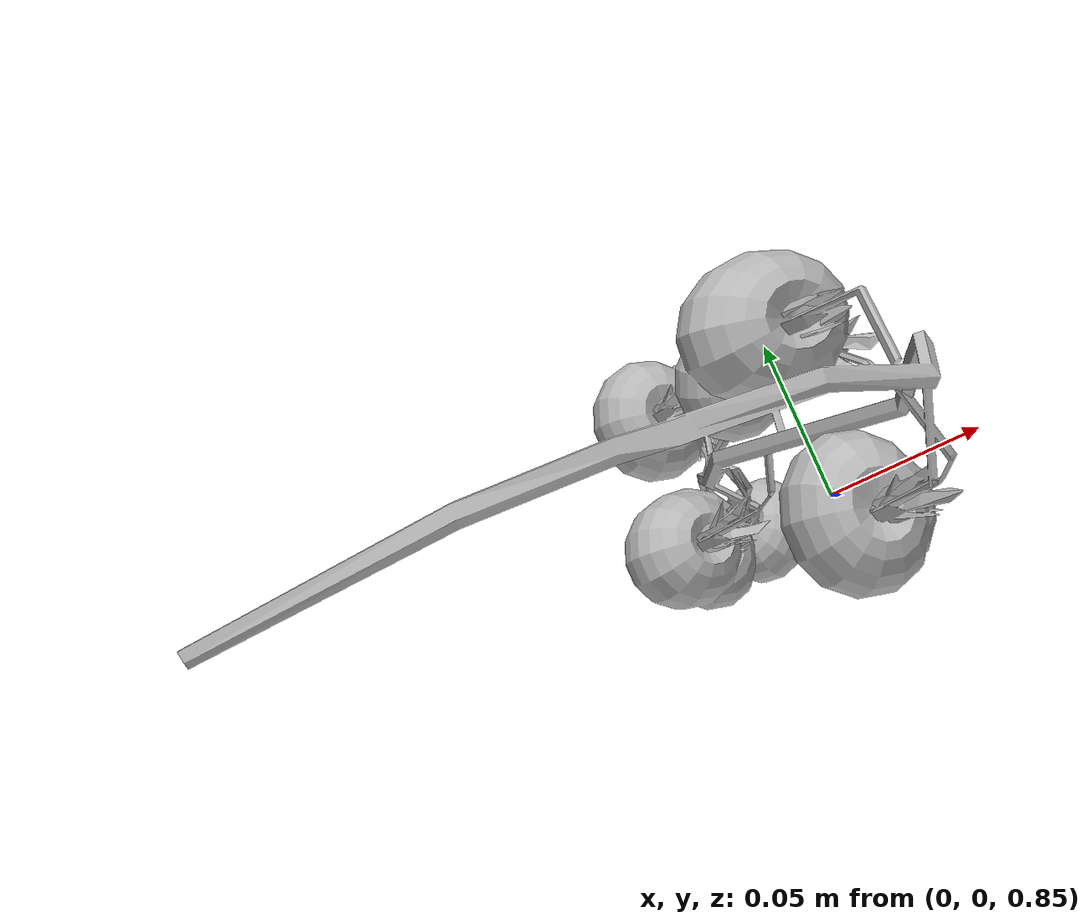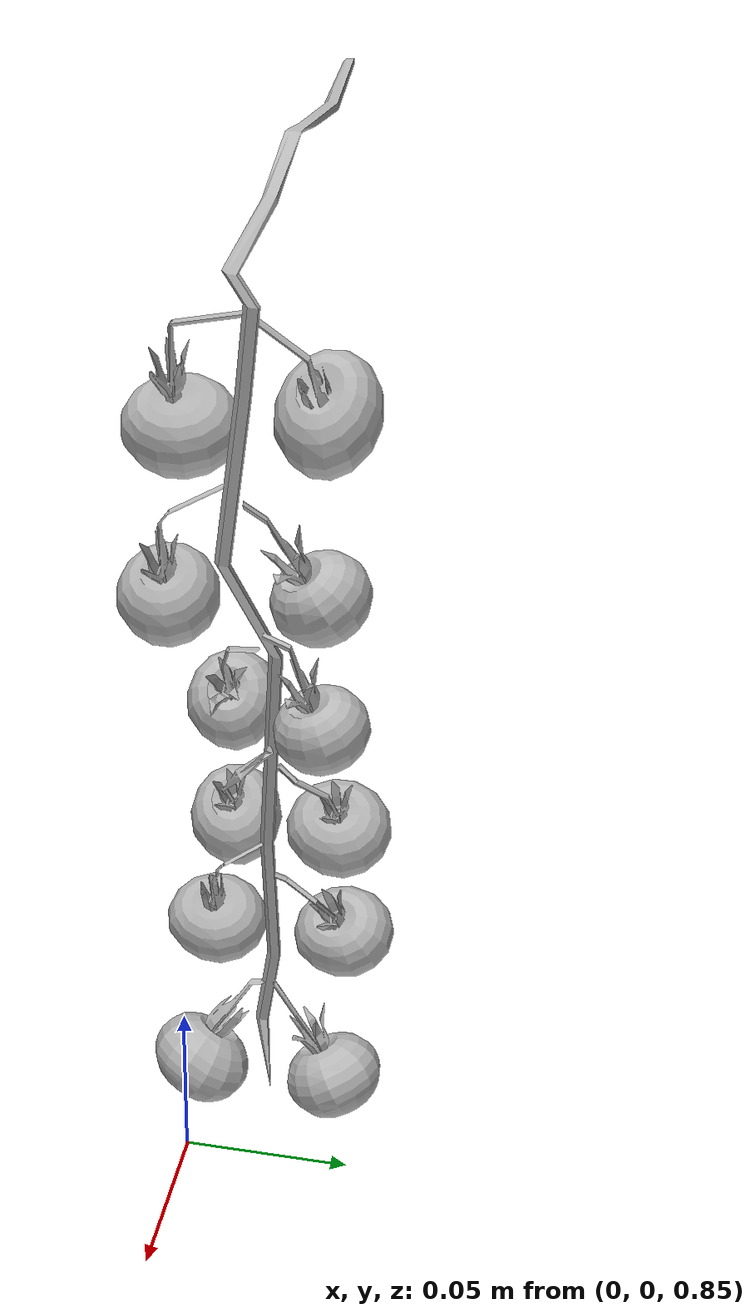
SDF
<?xml version="1.0"?>
<sdf version="1.6">
  <model name="tomato1_truss">
    <static>true</static>
    <link name="link">
      <collision name="collision">
        <geometry>
          <cylinder>
            <radius>0.09</radius>
            <length>0.35</length>
          </cylinder>
        </geometry>
        <pose>0 0.02 0.98 0 0 0</pose>
      </collision>
      <visual name="fruits">
        <geometry>
          <mesh>
            <uri>model://tomato1_truss/meshes/fruits.dae</uri>
          </mesh>
        </geometry>
        <material>
          <script>
            <uri>model://tomato1_truss/materials/scripts/</uri>
            <uri>model://tomato1_truss/materials/textures/</uri>
            <name>fruit</name>
          </script>
        </material>
      </visual>
      <visual name="stems">
        <geometry>
          <mesh>
            <uri>model://tomato1_truss/meshes/stems.dae</uri>
          </mesh>
        </geometry>
        <material>
          <script>
            <uri>model://tomato1_truss/materials/scripts/</uri>
            <uri>model://tomato1_truss/materials/textures/</uri>
            <name>branch</name>
          </script>
        </material>
      </visual>
    </link>
  </model>
</sdf>
